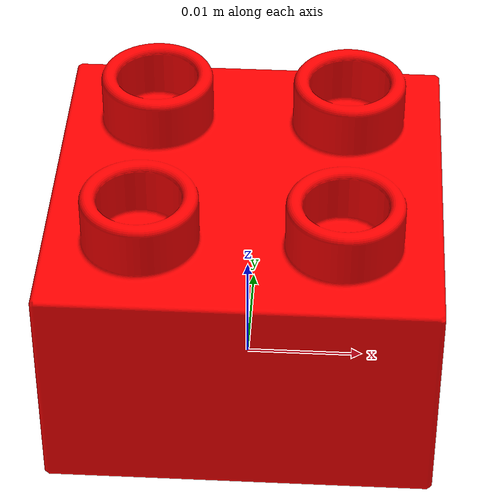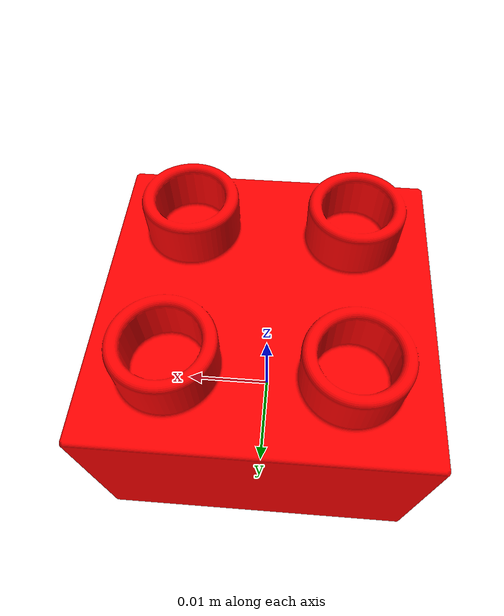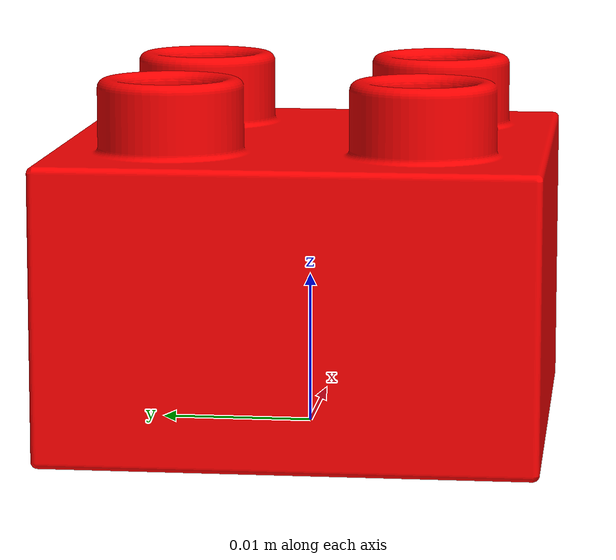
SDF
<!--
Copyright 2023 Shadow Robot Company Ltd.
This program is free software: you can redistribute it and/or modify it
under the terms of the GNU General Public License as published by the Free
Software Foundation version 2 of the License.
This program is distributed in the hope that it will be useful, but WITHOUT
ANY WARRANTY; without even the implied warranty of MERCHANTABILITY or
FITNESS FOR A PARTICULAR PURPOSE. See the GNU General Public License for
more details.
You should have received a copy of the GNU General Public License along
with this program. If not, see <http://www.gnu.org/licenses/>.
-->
<?xml version="1.0" ?>

<sdf version="1.4">
  <model name="duplo_2x2x1">
    <link name="link">
      <inertial>
        <mass>0.2</mass>
      </inertial>
      <collision name="collision">
        <pose>0.0 0.0 0.0 0 0.0 0.0</pose>
        <geometry>
          <mesh>
            <uri>model://duplo_2x2x1/meshes/duplo_2x2x1.stl</uri>
          </mesh>
        </geometry>
      </collision>
      <visual name="visual">
        <pose>0.0 0.0 0.0 0 0.0 0.0</pose>
        <geometry>
          <mesh>
            <uri>model://duplo_2x2x1/meshes/duplo_2x2x1.stl</uri>
          </mesh>
        </geometry>
        <material>
          <ambient>1 0 0 1</ambient>
          <diffuse>1 0 0 1</diffuse>
          <specular>0.1 0.1 0.1 1</specular>
        </material>
      </visual>
    </link>
  </model>
</sdf>
